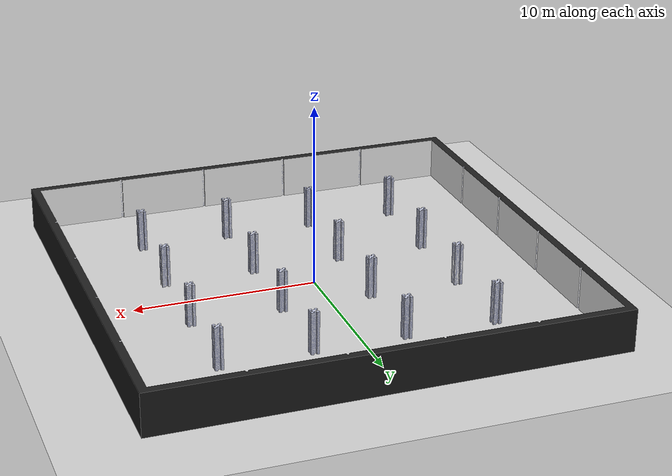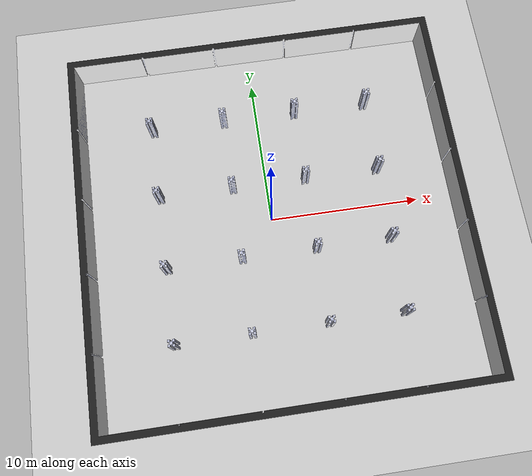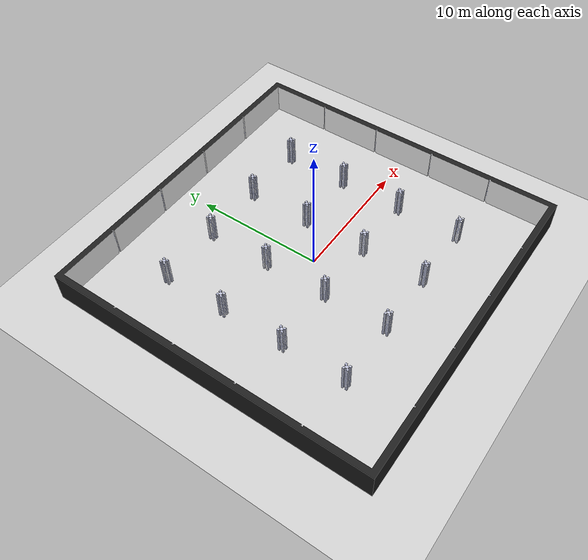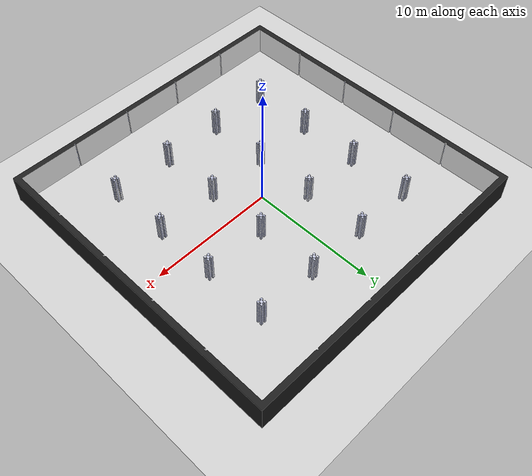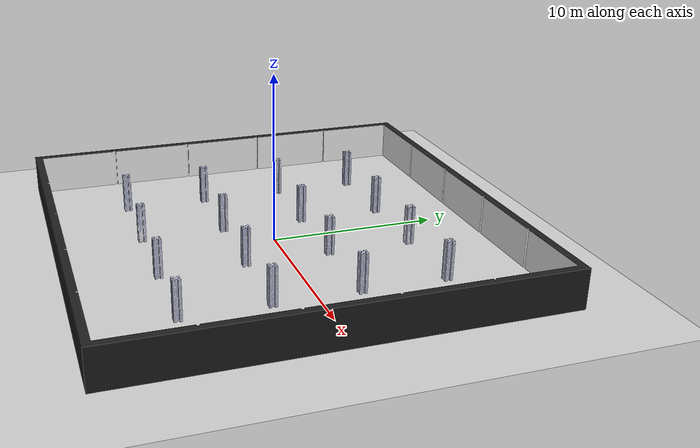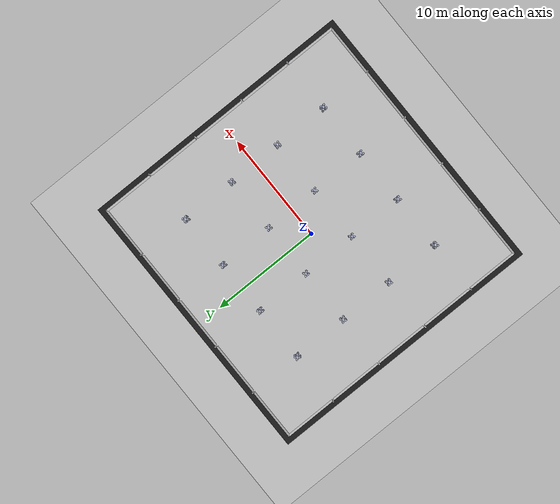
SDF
<sdf version="1.6">
 <world name="default">
  <model name="robot field">
   <static>1</static>
   <link name="link">
    <collision name="collision">
     <geometry><mesh><uri>model://robot_field/meshes/model.dae</uri><scale>0 0 0</scale></mesh></geometry>
    </collision>
    <visual name="visual">
     <geometry><mesh><uri>model://robot_field/meshes/model.dae</uri><scale>15 15 30</scale></mesh></geometry>
    </visual>
   </link>
   <pose>0 0 -1 0 -0 0</pose>
  </model>
  <model name="ground_plane">
   <static>1</static>
   <link name="link">
    <collision name="collision">
     <geometry><plane><normal>0 0 1</normal><size>100 100</size></plane></geometry>
     <surface><friction><ode><mu>100</mu><mu2>50</mu2></ode></friction></surface>
    </collision>
    <visual name="visual">
     <cast_shadows>0</cast_shadows>
     <geometry><plane><normal>0 0 1</normal><size>100 100</size></plane></geometry>
     <material>
      <script><uri>file://media/materials/scripts/gazebo.material</uri><name>Gazebo/Grey</name></script>
     </material>
    </visual>
   </link>
  </model>
  <light name="sun" type="directional">
   <pose>0 0 10 0 -0 0</pose>
   <diffuse>0.8 0.8 0.8 1</diffuse>
   <specular>0.2 0.2 0.2 1</specular>
   <attenuation>
    <range>1000</range>
    <constant>0.9</constant>
    <linear>0.01</linear>
    <quadratic>0.001</quadratic>
   </attenuation>
   <direction>0 0.5 -0.9</direction>
  </light>
  <gravity>0 0 -9.8</gravity>
  <magnetic_field>6e-06 2.3e-05 -4.2e-05</magnetic_field>
  <atmosphere type="adiabatic"/>
  <physics name="default_physics" default="0" type="ode">
   <max_step_size>0.001</max_step_size>
   <real_time_factor>1</real_time_factor>
   <real_time_update_rate>1000</real_time_update_rate>
  </physics>
  <scene><ambient>0.4 0.4 0.4 1</ambient><background>0.7 0.7 0.7 1</background><shadows>1</shadows></scene>
  <spherical_coordinates>
   <surface_model>EARTH_WGS84</surface_model>
   <latitude_deg>0</latitude_deg>
   <longitude_deg>0</longitude_deg>
   <elevation>0</elevation>
   <heading_deg>0</heading_deg>
  </spherical_coordinates>
  <physics type="ode">
   <max_step_size>0.005</max_step_size>
   <real_time_factor>1</real_time_factor>
   <real_time_update_rate>200</real_time_update_rate>
  </physics>
 </world>
</sdf>
